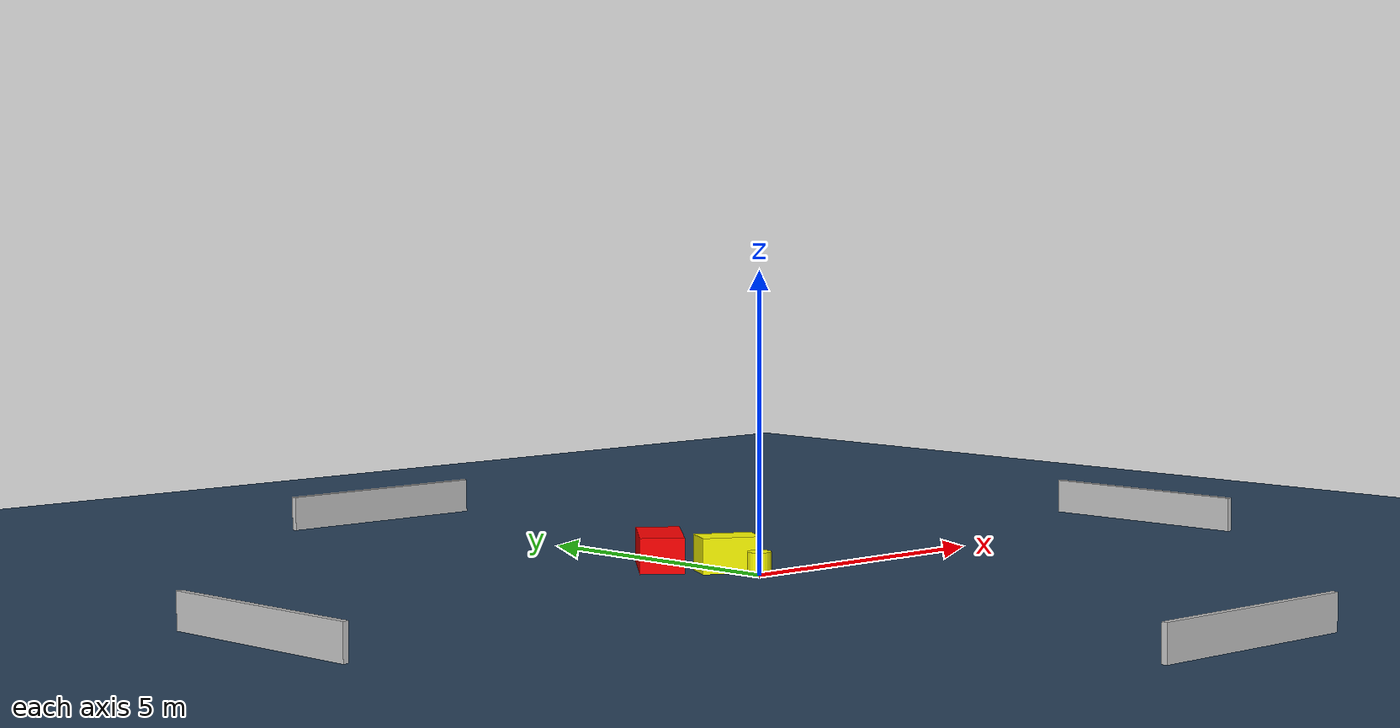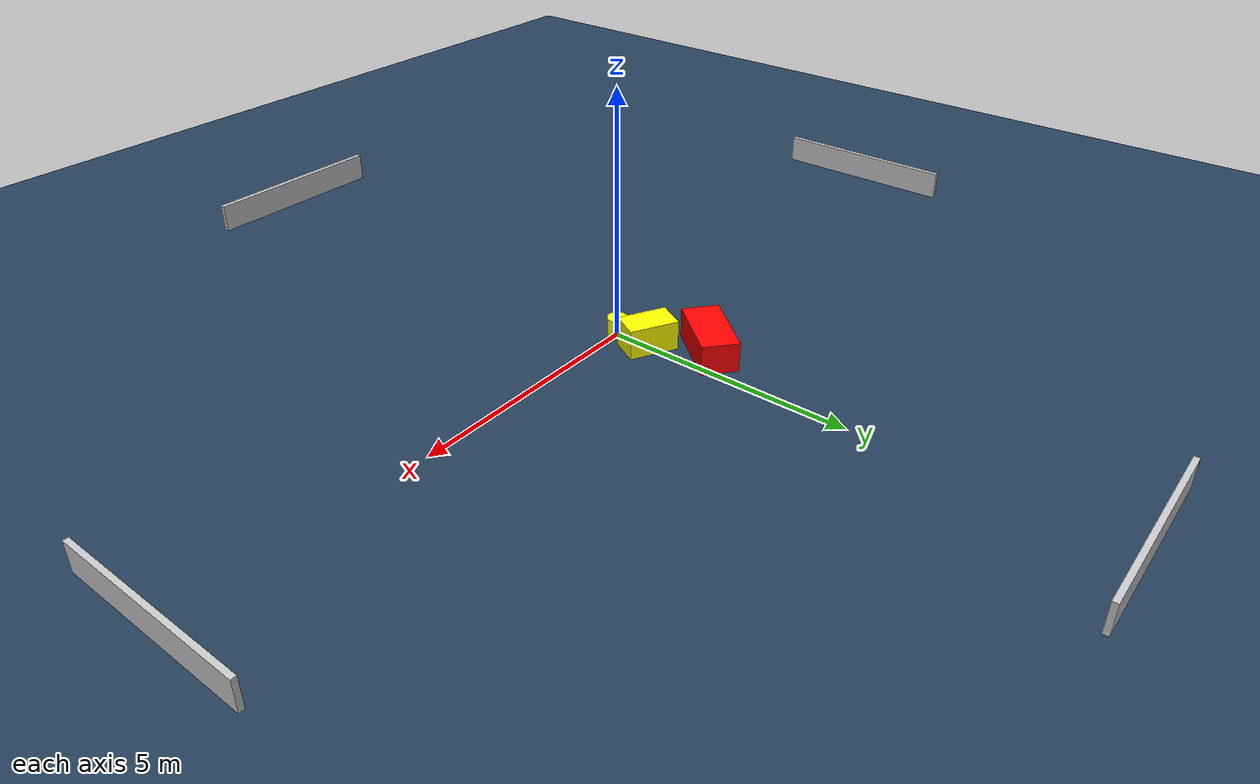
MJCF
<?xml version="1.0" ?>
<mujoco model="generated_environment">
  <option timestep="0.01" integrator="RK4" cone="elliptic"/>
  <default>
    <geom density="1"/>
  </default>
  <asset>
    <texture builtin="gradient" height="3072" name="skybox" rgb1="0.3 0.5 0.7" rgb2="0 0 0" type="skybox" width="512"/>
    <texture builtin="checker" height="300" name="groundplane" rgb1="0.2 0.3 0.4" rgb2="0.1 0.2 0.3" type="2d" width="300"/>
    <material name="groundplane" reflectance="0.2" texrepeat="5 5" texture="groundplane"/>
  </asset>
  <worldbody>
    <light dir="0 0 -1" directional="true" pos="0 0 1.5"/>
    <geom condim="3" friction="0.5 0.005 0.001" material="groundplane" name="floor" pos="0 0 0" size="0 0 0.05" type="plane"/>
    <body name="walls">
      <geom name="wall_1" condim="4" pos="-10.0 0.0 0.3" rgba="0.800000011920929 0.800000011920929 0.800000011920929 1.0" size="0.05 2.0 0.3" type="box"/>
      <geom name="wall_2" condim="4" pos="10.0 0.0 0.3" rgba="0.800000011920929 0.800000011920929 0.800000011920929 1.0" size="0.05 2.0 0.3" type="box"/>
      <geom name="wall_3" condim="4" pos="0.0 -10.0 0.3" rgba="0.800000011920929 0.800000011920929 0.800000011920929 1.0" size="2.0 0.05 0.3" type="box"/>
      <geom name="wall_4" condim="4" pos="0.0 10.0 0.3" rgba="0.800000011920929 0.800000011920929 0.800000011920929 1.0" size="2.0 0.05 0.3" type="box"/>
    </body>
    <body name="robot">
      <joint name="joint_x" type="slide" pos="0 0 0" axis="1 0 0"/>
      <joint name="joint_y" type="slide" pos="0 0 0" axis="0 1 0"/>
      <geom name="robot" type="cylinder" pos="0.0 0.0 0.2" size="0.2 0.2 0.0" mass="5.0" friction="1.0 0.005 0.0001" condim="4" rgba="1.0 1.0 0.0 1.0"/>
    </body>
    <body name="obstacle_1_movable">
      <geom name="obstacle_1_movable" condim="4" pos="-0.020298045168830818 0.7311054321156659 0.3" euler="0 0 241.72920364515406" friction="0.0 0.005 0.001" rgba="1.0 1.0 0.0 1.0" size="0.29948391734811053 0.49739300275764503 0.3" type="box" mass="0.1"/>
      <joint type="free"/>
    </body>
    <body name="obstacle_2_static">
      <geom name="obstacle_2_static" condim="4" pos="-0.5692267740204734 1.7794634072231654 0.3" euler="0 0 320.27657970451344" friction="0.0 0.005 0.001" rgba="1.0 0.0 0.0 1.0" size="0.3698001209412765 0.727640792401193 0.3" type="box"/>
    </body>
  </worldbody>
  <actuator>
    <motor name="actuator_x" joint="joint_x" gear="1" ctrlrange="-1 1"/>
    <motor name="actuator_y" joint="joint_y" gear="1" ctrlrange="-1 1"/>
  </actuator>
</mujoco>
